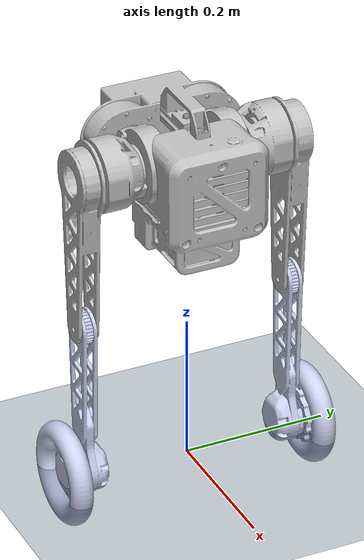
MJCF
<mujoco model="biped_wheel scene">
  <include file="biped_wheel.xml"/>

  <statistic center="0 0 0.1" extent="0.8"/>

  <visual>
    <headlight diffuse="0.6 0.6 0.6" ambient="0.3 0.3 0.3" specular="0 0 0"/>
    <rgba haze="0.15 0.25 0.35 1"/>
    <global azimuth="-130" elevation="-20"/>
  </visual>

  <asset>
    <texture type="skybox" builtin="gradient" rgb1="0.3 0.5 0.7" rgb2="0 0 0" width="512" height="3072"/>
    <texture type="2d" name="groundplane" builtin="checker" mark="edge" rgb1="0.2 0.3 0.4" rgb2="0.1 0.2 0.3"
      markrgb="0.8 0.8 0.8" width="300" height="300"/>
    <material name="groundplane" texture="groundplane" texuniform="true" texrepeat="5 5" reflectance="0.2"/>
  </asset>

  <worldbody>
    <light pos="0 0 1.5" dir="0 0 -1" directional="true"/>
    <geom name="floor" size="0 0 0.05" type="plane" material="groundplane"/>

  </worldbody>
</mujoco>

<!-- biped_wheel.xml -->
<mujoco model="bi_urdf">
  <compiler angle="radian" meshdir="meshes"/>

  <default>
    <default class="biped_wheel">
      <geom friction="0.4" margin="0.001" condim="1"/>
      <joint axis="0 1 0" damping="0.1" armature="0.01" frictionloss="0.2"/>
      <motor ctrlrange="-12 12"/>
      <default class="hip">
        <joint axis="1 0 0" range="-1.0472 1.0472"/>
        <motor ctrlrange="-12 12"/>
      </default>
      <default class="thigh">
        <joint axis="0 1 0" range="-1.57 1.57"/>
        <motor ctrlrange="-12 12"/>
      </default>
      <default class="calf">
        <joint axis="0 1 0" range="-2.7227 2.7227"/>
        <motor ctrlrange="-12 12"/>
      </default>
      <default class="wheel">
        <joint axis="0 1 0" />
        <motor ctrlrange="-12 12"/>
      </default>
      <default class="visual">
        <geom type="mesh" contype="0" conaffinity="0" group="2"/>
      </default>
      <default class="collision">
        <geom group="3"/>
        <default class="foot">
          <geom size="0.022" priority="1" condim="6"
            friction="0.4 0.02 0.01"/>
        </default>
      </default>
    </default>
  </default>

  <asset>
    <mesh name="Base" file="Base.STL"/>
    <mesh name="L_hip" file="L_hip.STL"/>
    <mesh name="L_thigh" file="L_thigh.STL"/>
    <mesh name="L_calf" file="L_calf.STL"/>
    <mesh name="L_wheel" file="L_wheel.STL"/>
    <mesh name="R_hip" file="R_hip.STL"/>
    <mesh name="R_thigh" file="R_thigh.STL"/>
    <mesh name="R_calf" file="R_calf.STL"/>
    <mesh name="R_wheel" file="R_wheel.STL"/>
  </asset>

  <worldbody>
    <body name="base" pos="0 0 0.5">
    <inertial pos="-0.02790197 0.00038374 -0.08713367" quat="0 0 0 1"
      mass="3.7440"
      diaginertia="0.01794711 0.02602695 0.02385452" />
    <freejoint />
    <site name="imu" pos="0 0 0" />
    <geom type="mesh" contype="0" conaffinity="0" group="1" density="0" rgba="0.752941 0.752941 0.752941 1" mesh="Base"/>
    <geom type="mesh" rgba="0.752941 0.752941 0.752941 1" mesh="Base"/>
      <body name="L_hip" pos="0 0.0562499 -0.054775">
        <inertial pos="-0.00437791 -0.0008348 -1.56e-06" quat="0.500781 0.500567 0.499216 0.499433" mass="0.573" diaginertia="0.000660672 0.00042648 0.000356838"/>
        <joint name="L_hip_joint" pos="0 0 0" axis="1 0 0"/>
        <geom type="mesh" contype="0" conaffinity="0" group="1" density="0" rgba="0.752941 0.752941 0.752941 1" mesh="L_hip"/>
        <geom type="mesh" rgba="0.752941 0.752941 0.752941 1" mesh="L_hip"/>
        <body name="L_thigh" pos="-0.000265036 0.0144425 0">
          <inertial pos="-3.19e-06 0.0541482 -0.0301496" quat="0.701453 -0.0610942 0.0615033 0.707424" mass="1.123" diaginertia="0.00510552 0.00499318 0.00103785"/>
          <joint name="L_thigh_joint" pos="0 0 0" axis="0 1 0"/>
          <geom type="mesh" contype="0" conaffinity="0" group="1" density="0" rgba="0.752941 0.752941 0.752941 1" mesh="L_thigh"/>
          <geom type="mesh" rgba="0.752941 0.752941 0.752941 1" mesh="L_thigh"/>
          <body name="L_calf" pos="0 0.0527576 -0.215">
            <inertial pos="2.3e-05 0.0297417 -0.152755" quat="0.70545 -0.0225398 0.0222614 0.708051" mass="0.555" diaginertia="0.00387656 0.00382006 0.000210819"/>
            <joint name="L_calf_joint" pos="0 0 0" axis="0 1 0"/>
            <geom type="mesh" contype="0" conaffinity="0" group="1" density="0" rgba="0.792157 0.819608 0.933333 1" mesh="L_calf"/>
            <geom type="mesh" rgba="0.792157 0.819608 0.933333 1" mesh="L_calf"/>
            <body name="L_wheel" pos="0 0.0372307 -0.215">
              <inertial pos="0 0.0151977 0" quat="0.706247 -0.0348799 -0.0348815 0.706245" mass="0.28" diaginertia="0.00088385 0.00045838 0.00045837"/>
              <joint name="L_wheel_joint" pos="0 0 0" axis="0 1 0"/>
              <geom type="mesh" contype="0" conaffinity="0" group="1" density="0" rgba="0.792157 0.819608 0.933333 1" mesh="L_wheel"/>
              <geom type="mesh" rgba="0.792157 0.819608 0.933333 1" mesh="L_wheel"/>
            </body>
          </body>
        </body>
      </body>
      <body name="R_hip" pos="-0.000265036 -0.0606924 -0.0547755">
        <inertial pos="-0.00411048 0.00527723 0" quat="0.499395 0.499254 0.500601 0.500747" mass="0.573" diaginertia="0.000660702 0.00042653 0.000356818"/>
        <joint name="R_hip_joint" pos="0 0 0" axis="1 0 0"/>
        <geom type="mesh" contype="0" conaffinity="0" group="1" density="0" rgba="0.752941 0.752941 0.752941 1" mesh="R_hip"/>
        <geom type="mesh" rgba="0.752941 0.752941 0.752941 1" mesh="R_hip"/>
        <body name="R_thigh" pos="0 -0.01 0">
          <inertial pos="-4.55e-06 -0.0541488 -0.0301497" quat="0.707341 0.0614924 -0.0611022 0.701537" mass="1.123" diaginertia="0.00510563 0.00499323 0.00103787"/>
          <joint name="R_thigh_joint" pos="0 0 0" axis="0 1 0"/>
          <geom type="mesh" contype="0" conaffinity="0" group="1" density="0" rgba="0.752941 0.752941 0.752941 1" mesh="R_thigh"/>
          <geom type="mesh" rgba="0.752941 0.752941 0.752941 1" mesh="R_thigh"/>
          <body name="R_calf" pos="0 -0.0527576 -0.215">
            <inertial pos="2.256e-05 -0.0297421 -0.152754" quat="0.708063 0.0222594 -0.0225428 0.705438" mass="0.555" diaginertia="0.00387663 0.00382014 0.000210818"/>
            <joint name="R_calf_joint" pos="0 0 0" axis="0 1 0"/>
            <geom type="mesh" contype="0" conaffinity="0" group="1" density="0" rgba="0.792157 0.819608 0.933333 1" mesh="R_calf"/>
            <geom type="mesh" rgba="0.792157 0.819608 0.933333 1" mesh="R_calf"/>
            <body name="R_wheel" pos="0 -0.0372307 -0.215">
              <inertial pos="0 -0.0151977 0" quat="0.270598 0.653283 0.65328 0.270598" mass="0.28" diaginertia="0.00088386 0.000458381 0.000458379"/>
              <joint name="R_wheel_joint" pos="0 0 0" axis="0 1 0"/>
              <geom type="mesh" contype="0" conaffinity="0" group="1" density="0" rgba="0.792157 0.819608 0.933333 1" mesh="R_wheel"/>
              <geom type="mesh" rgba="0.792157 0.819608 0.933333 1" mesh="R_wheel"/>
            </body>
          </body>
        </body>
      </body>
    </body>
  </worldbody>

  <actuator>
  <motor class="hip" name="L_hip" joint="L_hip_joint" />
  <motor class="thigh" name="L_thigh" joint="L_thigh_joint" />
  <motor class="calf" name="L_calf" joint="L_calf_joint" />
  <motor class="wheel" name="L_wheel" joint="L_wheel_joint" />
  <motor class="hip" name="R_hip" joint="R_hip_joint" />
  <motor class="thigh" name="R_thigh" joint="R_thigh_joint" />
  <motor class="calf" name="R_calf" joint="R_calf_joint" />
  <motor class="wheel" name="R_wheel" joint="R_wheel_joint" />
  </actuator>

  <sensor>
    <jointpos name="L_hip_pos" joint="L_hip_joint" />
    <jointpos name="L_thigh_pos" joint="L_thigh_joint" />
    <jointpos name="L_calf_pos" joint="L_calf_joint" />

    <jointpos name="R_hip_pos" joint="R_hip_joint" />
    <jointpos name="R_thigh_pos" joint="R_thigh_joint" />
    <jointpos name="R_calf_pos" joint="R_calf_joint" />

    <jointvel name="L_hip_vel" joint="L_hip_joint" />
    <jointvel name="L_thigh_vel" joint="L_thigh_joint" />
    <jointvel name="L_calf_vel" joint="L_calf_joint" />
    <jointvel name="L_wheel_vel" joint="L_wheel_joint" />

    <jointvel name="R_hip_vel" joint="R_hip_joint" />
    <jointvel name="R_thigh_vel" joint="R_thigh_joint" />
    <jointvel name="R_calf_vel" joint="R_calf_joint" />
    <jointvel name="R_wheel_vel" joint="R_wheel_joint" />

    <jointactuatorfrc name="L_hip_torque" joint="L_hip_joint" noise="0.01" />
    <jointactuatorfrc name="L_thigh_torque" joint="L_thigh_joint" noise="0.01" />
    <jointactuatorfrc name="L_calf_torque" joint="L_calf_joint" noise="0.01" />
    <jointactuatorfrc name="L_wheel_torque" joint="L_wheel_joint" noise="0.01" />

    <jointactuatorfrc name="R_hip_torque" joint="R_hip_joint" noise="0.01" />
    <jointactuatorfrc name="R_thigh_torque" joint="R_thigh_joint" noise="0.01" />
    <jointactuatorfrc name="R_calf_torque" joint="R_calf_joint" noise="0.01" />
    <jointactuatorfrc name="R_wheel_torque" joint="R_wheel_joint" noise="0.01" />

    <framequat name="imu_quat" objtype="site" objname="imu" />
    <gyro name="imu_gyro" site="imu" />
    <accelerometer name="imu_acc" site="imu" />

    <framepos name="frame_pos" objtype="site" objname="imu" />
    <framelinvel name="frame_vel" objtype="site" objname="imu" />
    <frameangvel name="frame_ang_vel" objtype="site" objname="imu" />
  </sensor>

</mujoco>
